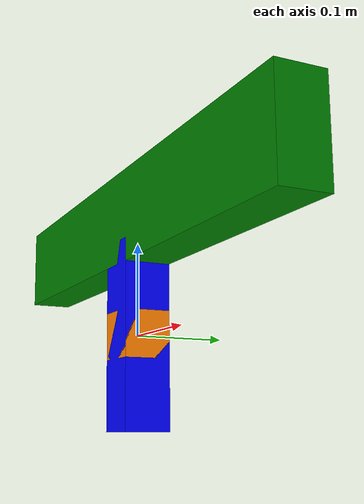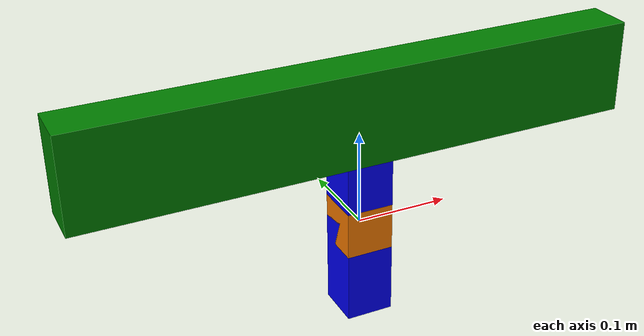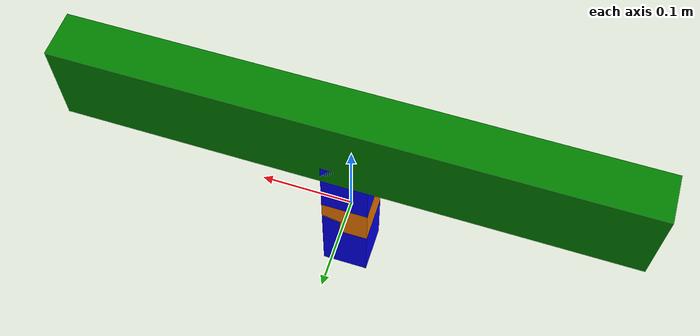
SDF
<?xml version='1.0'?>
<sdf version='1.6'>
  <model name='conveyor'>
    <link name='base_link'>

      <visual name='visual_base'>
      <pose frame=''>0 0 0 0 0 0</pose>
        <geometry>
          <box>
            <size>0.05 0.05 0.05</size>
          </box>
        </geometry>
        <material>
          <diffuse>1 0.5 0 1.0</diffuse>
        </material>
      </visual>
    </link>

    <link name='first_link'>
      <gravity>0</gravity>
      <visual name='visual_1'>
      <pose frame=''>0 0 0 0 0 0</pose>
        <geometry>
          <box>
            <size>0.05 0.05 0.2</size>

          </box>
        </geometry>
        <material>
          <diffuse>0 0 1 1</diffuse>
        </material>
      </visual>
    </link>

    <link name='collision_link1'>
      <inertial>
        <mass>1</mass>
        <inertia>
          <ixx>1</ixx>
          <ixy>0</ixy>
          <ixz>0</ixz>
          <iyy>1</iyy>
          <iyz>0</iyz>
          <izz>1</izz>
        </inertia>
      </inertial>

      <self_collide>0</self_collide>
      <visual name='visual_01'>
        <pose frame=''>0 0 0.125 0 0 0</pose>
        <geometry>
          <box>
            <size>0.6 0.05 0.1</size> <!-- When changing height, change the controller -->
          </box>
        </geometry>
        <material>
          <diffuse>0 0.5 0 1.0</diffuse>
        </material>
      </visual>

      <collision name='surface'>

        <pose frame=''>0 0 0.125 0 0 0</pose>
        <laser_retro>0</laser_retro>
        <max_contacts>10</max_contacts>
        <geometry>
          <box>
            <size>0.6 0.05 0.1</size>
          </box>
        </geometry>
        <surface>
          <friction>
            <ode>
              <mu>0.6</mu>
              <mu2>0.6</mu2>
              <fdir1>0 0 0</fdir1>
              <slip1>0</slip1>
              <slip2>0</slip2>
            </ode>
            <torsional>
              <coefficient>1</coefficient>
              <patch_radius>0</patch_radius>
              <surface_radius>0</surface_radius>
              <use_patch_radius>1</use_patch_radius>
              <ode>
                <slip>0</slip>
              </ode>
            </torsional>
          </friction>
          <bounce>
            <restitution_coefficient>0</restitution_coefficient>
            <threshold>1e+06</threshold>
          </bounce>
          <contact>
            <collide_without_contact>0</collide_without_contact>
            <collide_without_contact_bitmask>1</collide_without_contact_bitmask>
            <collide_bitmask>1</collide_bitmask>
            <ode>
              <soft_cfm>0</soft_cfm>
              <soft_erp>0.2</soft_erp>
              <kp>1e+13</kp>
              <kd>1</kd>
              <max_vel>0.01</max_vel>
              <min_depth>0</min_depth>
            </ode>
            <bullet>
              <split_impulse>1</split_impulse>
              <split_impulse_penetration_threshold>-0.01</split_impulse_penetration_threshold>
              <soft_cfm>0</soft_cfm>
              <soft_erp>0.2</soft_erp>
              <kp>1e+13</kp>
              <kd>1</kd>
            </bullet>
          </contact>
        </surface>
      </collision>
    </link>

    <joint name="zeroth_joint" type="prismatic">
      <parent>base_link</parent>
      <child>first_link</child>
      <axis>
        <dynamics>
          <friction>9</friction>
          <damping>5</damping>
          <spring_stiffness>10</spring_stiffness>
        </dynamics>
        <xyz>0 1 0</xyz>
      </axis>
    </joint>

    <joint name="first_joint" type="prismatic">
      <parent>first_link</parent>
      <child>collision_link1</child>
      <axis>
        <dynamics>
          <friction>1</friction>
          <damping>5</damping>
          <spring_stiffness>10</spring_stiffness>
        </dynamics>
        <xyz>0 0 1</xyz>
      </axis>
    </joint>

    <transmission name="tran_0">
      <robotNamespace>/conveyor</robotNamespace>
      <type>transmission_interface/SimpleTransmission</type>
      <joint name="zeroth_joint">
        <hardwareInterface>PositionJointInterface</hardwareInterface>
      </joint>
      <actuator name="motor_0">
        <hardwareInterface>PositionJointInterface</hardwareInterface>
        <mechanicalReduction>1</mechanicalReduction>
      </actuator>
    </transmission>

    <transmission name="tran_1">
      <robotNamespace>/conveyor</robotNamespace>
      <type>transmission_interface/SimpleTransmission</type>
      <joint name="first_joint">
        <hardwareInterface>PositionJointInterface</hardwareInterface>
      </joint>
      <actuator name="motor_1">
        <hardwareInterface>PositionJointInterface</hardwareInterface>
        <mechanicalReduction>1</mechanicalReduction>
      </actuator>
    </transmission>

  </model>
</sdf>
